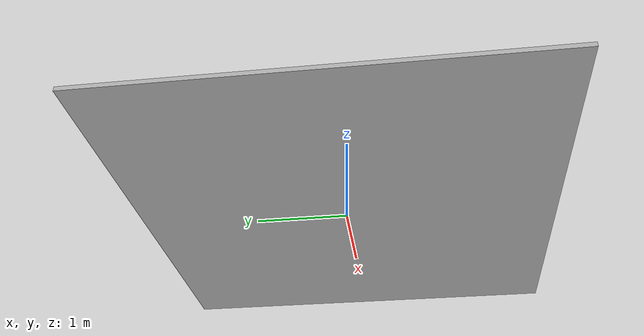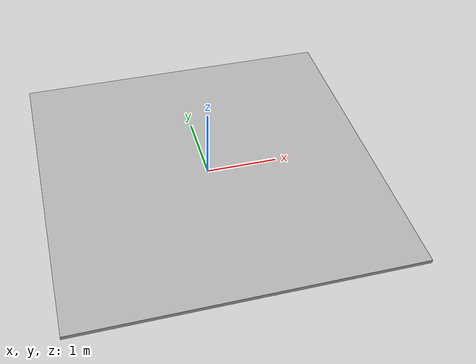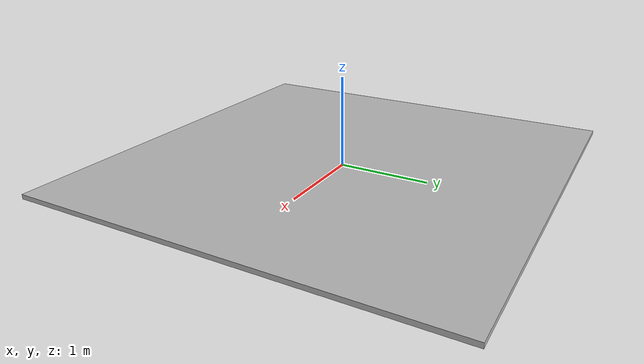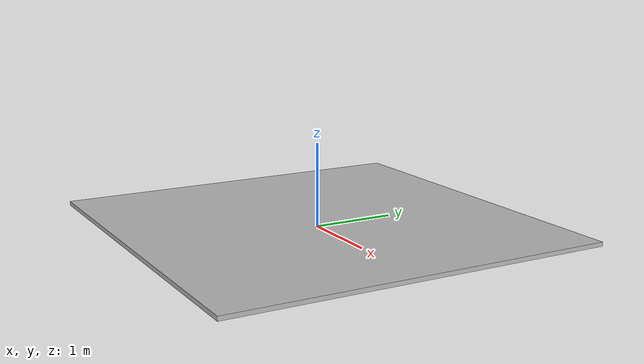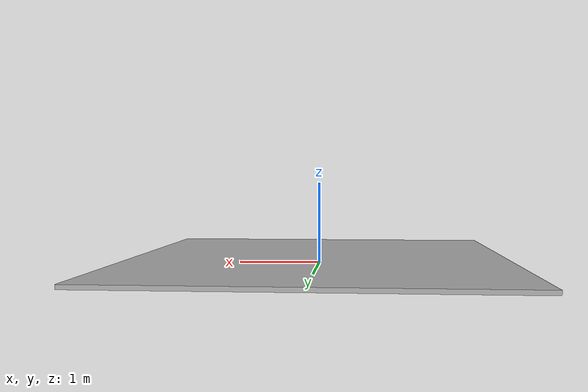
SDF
<?xml version='1.0'?>
<sdf version="1.4">
    <model name="aruco_map">
        <pose>0 0 0.05 0 0 0</pose>
        <static>true</static>
        <link name="link">
            <visual name="visual">
                <geometry>
                    <mesh>
                        <uri>model://aruco_map/meshes/untitled2.dae</uri>
                    </mesh>
                </geometry>
            </visual>

        </link>
    </model>
</sdf>
